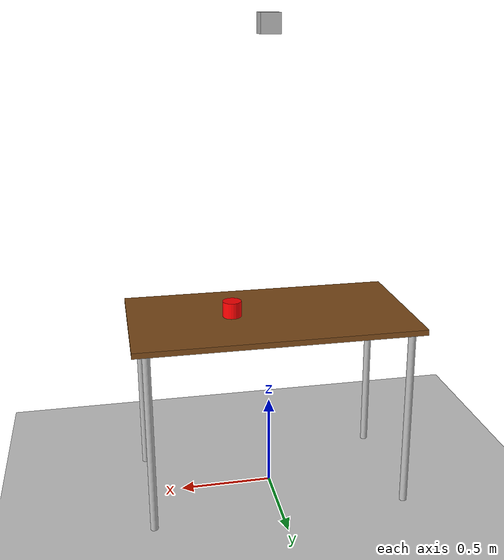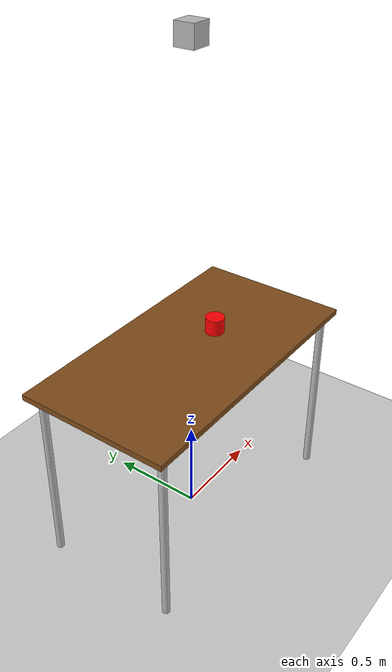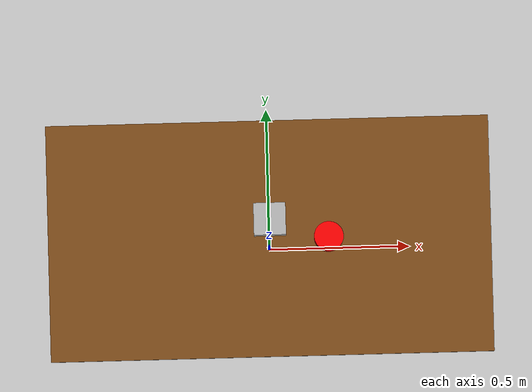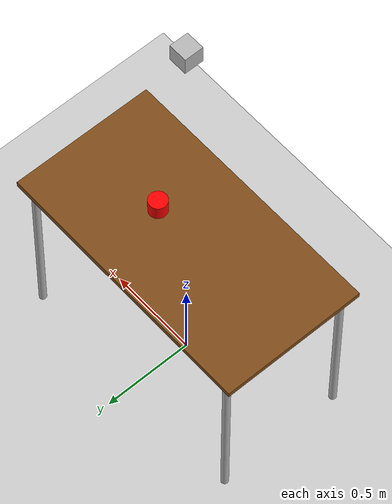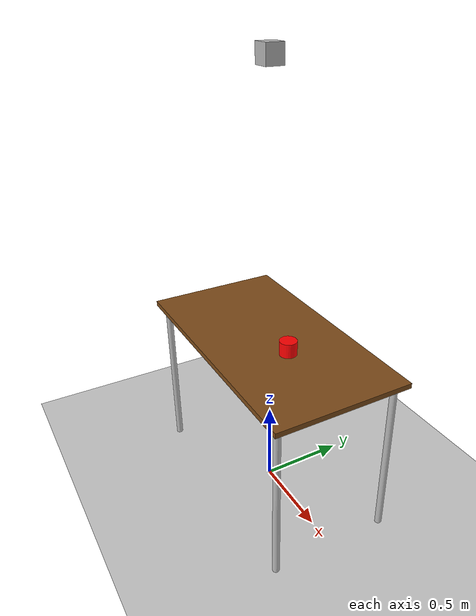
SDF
<?xml version='1.0'?>
<sdf version='1.7'>
  <world name='default'>

    <gravity>0 0 -9.8</gravity>
    <magnetic_field>6e-06 2.3e-05 -4.2e-05</magnetic_field>

    <light name='sun' type='directional'>
      <cast_shadows>true</cast_shadows>
      <pose>0 0 10 0 0 0</pose>
      <diffuse>0.8 0.8 0.8 1</diffuse>
      <specular>0.2 0.2 0.2 1</specular>
      <attenuation>
        <range>1000</range>
        <constant>0.9</constant>
        <linear>0.01</linear>
        <quadratic>0.001</quadratic>
      </attenuation>
      <direction>-0.5 0.1 -0.9</direction>
    </light>

    <model name='ground_plane'>
      <static>true</static>
      <link name='link'>
        <collision name='collision'>
          <geometry>
            <plane>
              <normal>0 0 1</normal>
              <size>100 100</size>
            </plane>
          </geometry>
        </collision>
        <visual name='visual'>
          <geometry>
            <plane>
              <normal>0 0 1</normal>
              <size>100 100</size>
            </plane>
          </geometry>
          <material>
            <ambient>0.8 0.8 0.8 1</ambient>
            <diffuse>0.8 0.8 0.8 1</diffuse>
          </material>
        </visual>
      </link>
    </model>

    <model name='table'>
      <static>true</static>
      <pose>0 0 0 0 0 0</pose>
      <link name='link'>
        <collision name='surface'>
          <pose>0 0 1 0 0 0</pose>
          <geometry>
            <box>
              <size>1.5 0.8 0.03</size>
            </box>
          </geometry>
        </collision>
        <visual name='visual'>
          <pose>0 0 1 0 0 0</pose>
          <geometry>
            <box>
              <size>1.5 0.8 0.03</size>
            </box>
          </geometry>
          <material>
            <ambient>0.5 0.3 0.1 1</ambient>
            <diffuse>0.5 0.3 0.1 1</diffuse>
          </material>
        </visual>

        <visual name='leg1'>
          <pose>0.68 0.35 0.5 0 0 0</pose>
          <geometry><cylinder><radius>0.02</radius><length>1</length></cylinder></geometry>
        </visual>
        <visual name='leg2'>
          <pose>0.68 -0.35 0.5 0 0 0</pose>
          <geometry><cylinder><radius>0.02</radius><length>1</length></cylinder></geometry>
        </visual>
        <visual name='leg3'>
          <pose>-0.68 -0.35 0.5 0 0 0</pose>
          <geometry><cylinder><radius>0.02</radius><length>1</length></cylinder></geometry>
        </visual>
        <visual name='leg4'>
          <pose>-0.68 0.35 0.5 0 0 0</pose>
          <geometry><cylinder><radius>0.02</radius><length>1</length></cylinder></geometry>
        </visual>
      </link>
    </model>

    <model name='unit_cylinder'>
      <pose>0.2 0 1.05 0 0 0</pose>
      <link name='link'>
        <collision name='collision'>
          <geometry>
            <cylinder><radius>0.05</radius><length>0.1</length></cylinder>
          </geometry>
        </collision>
        <visual name='visual'>
          <geometry>
            <cylinder><radius>0.05</radius><length>0.1</length></cylinder>
          </geometry>
          <material>
            <ambient>1 0 0 1</ambient>
            <diffuse>1 0 0 1</diffuse>
          </material>
        </visual>
      </link>
    </model>

    <model name='depth_camera'>
      <pose>0 0 2.5 0 1.5708 1.5708</pose>
      <static>true</static>
      <link name='link'>
        <visual name='visual'>
          <geometry><box><size>0.1 0.1 0.1</size></box></geometry>
        </visual>

        <sensor name="camera" type="depth">
          <always_on>true</always_on>
          <update_rate>30</update_rate>
          <visualize>true</visualize>
          <camera>
            <horizontal_fov>1.4</horizontal_fov>
            <image>
              <width>640</width>
              <height>480</height>
              <format>B8G8R8</format>
            </image>
            <clip>
              <near>0.1</near>
              <far>10</far>
            </clip>
          </camera>

          <plugin name="camera_plugin" filename="libgazebo_ros_camera.so">
            <ros>
              <namespace>camera</namespace>
            </ros>
            <camera_name>top_down</camera_name>
            <frame_name>camera_link_optical</frame_name>
            <min_depth>0.1</min_depth>
            <max_depth>10.0</max_depth>
          </plugin>
        </sensor>
      </link>
    </model>

  </world>
</sdf>
